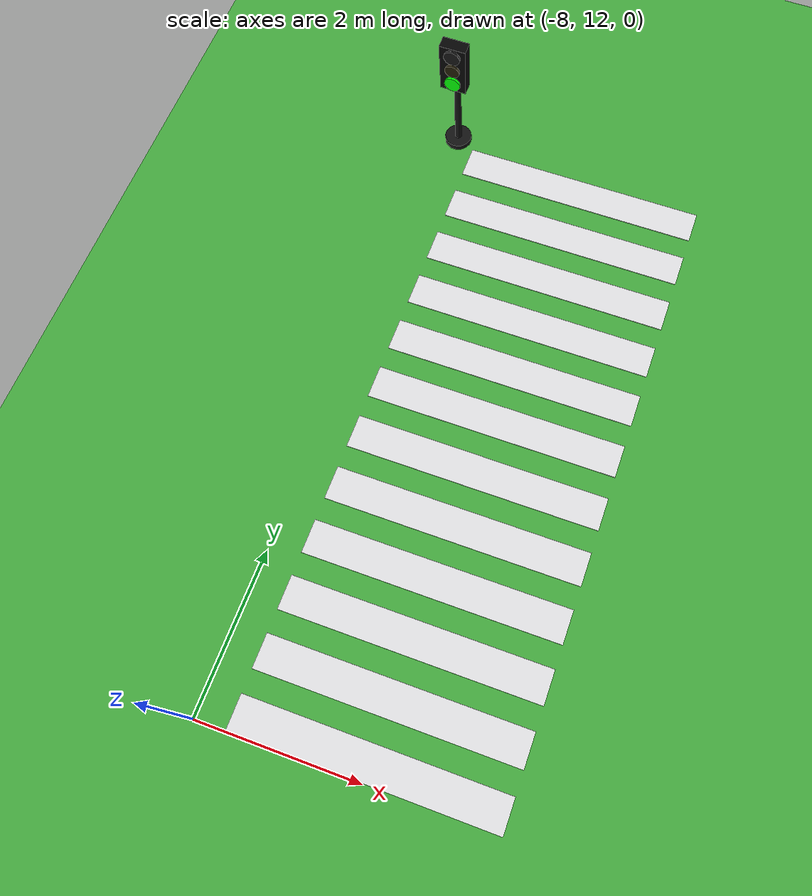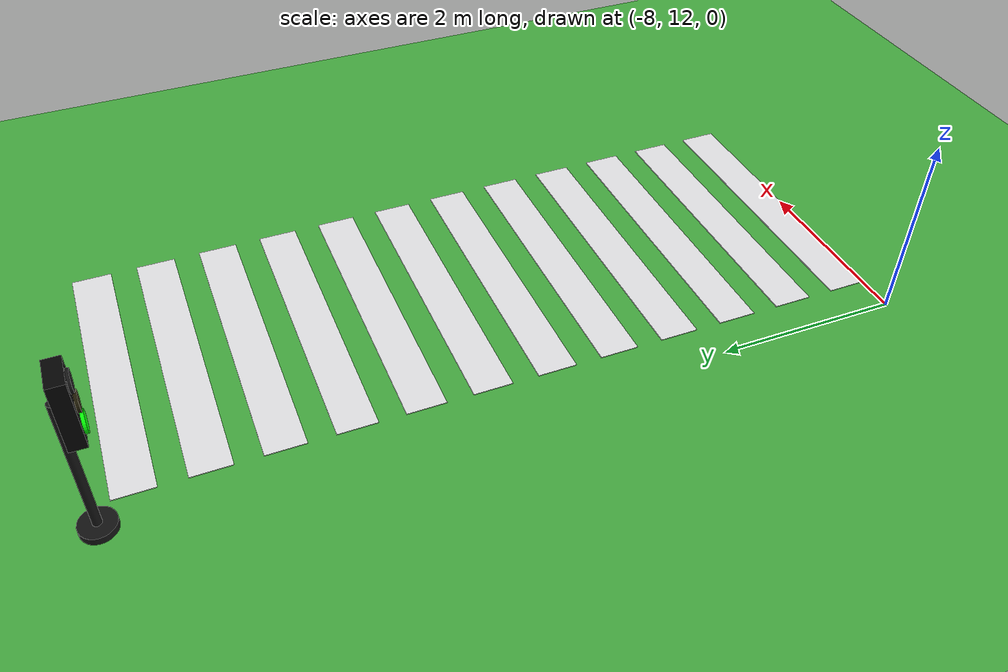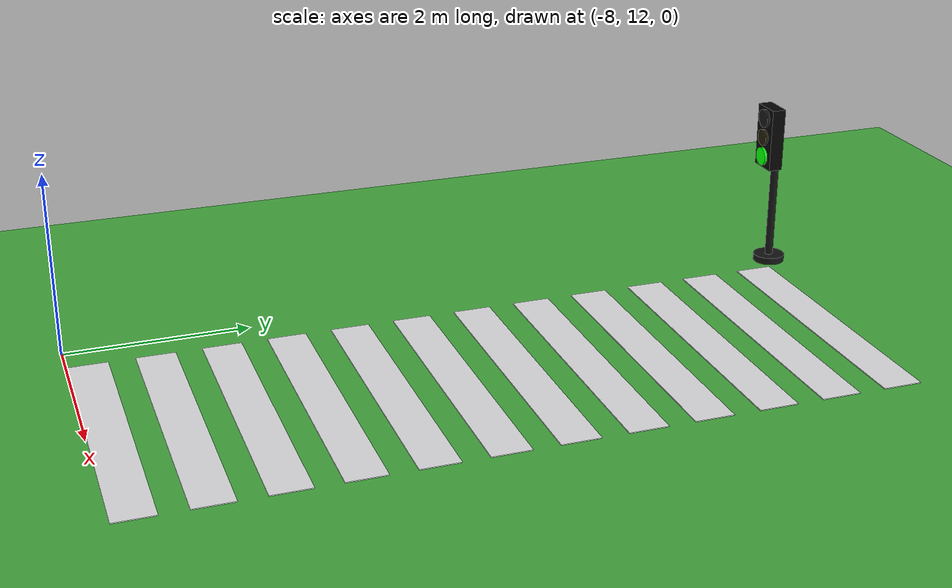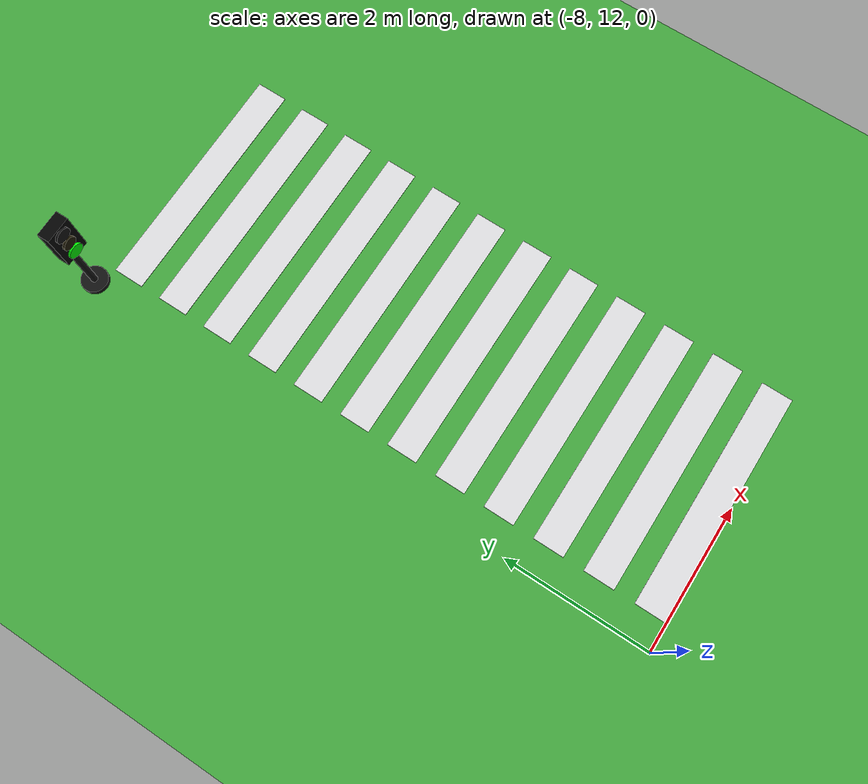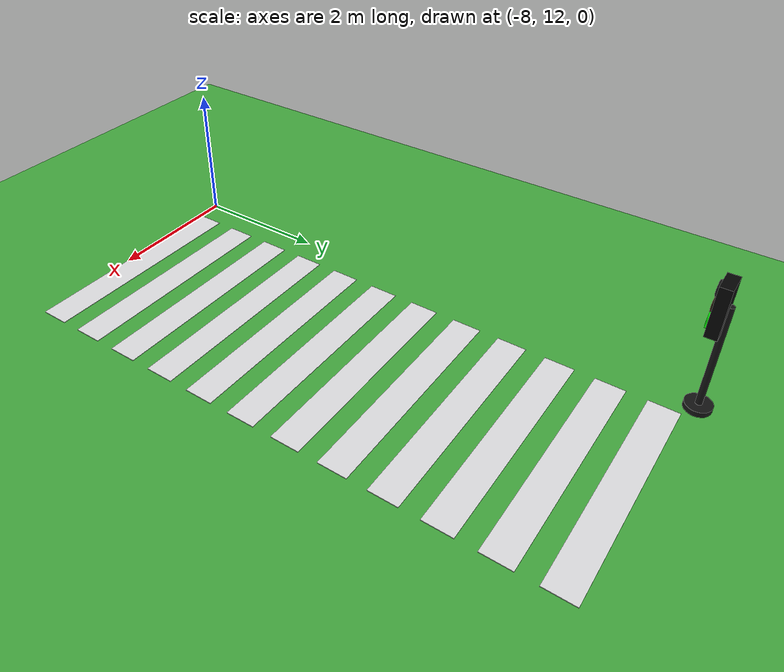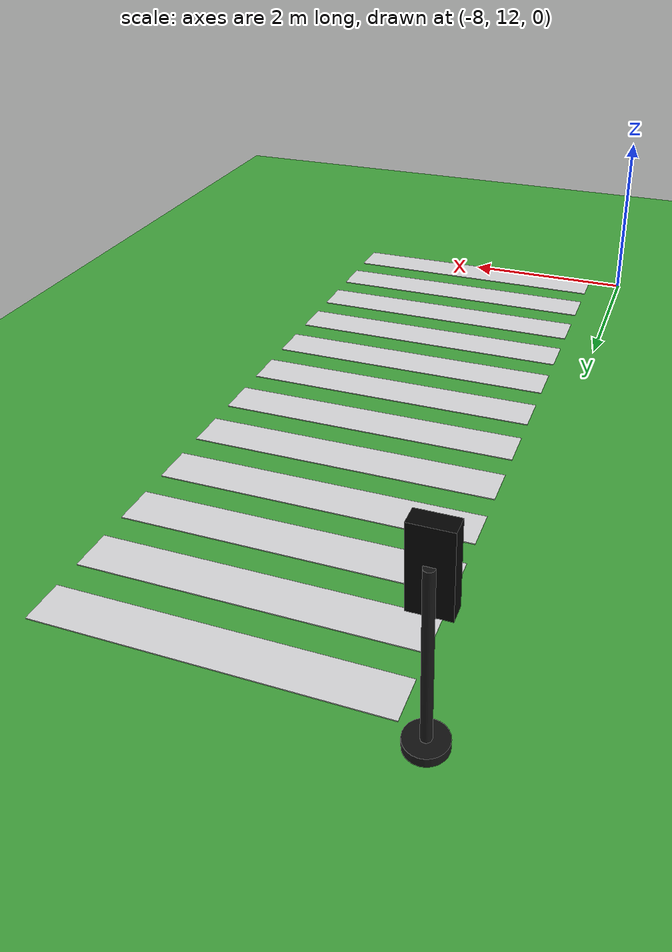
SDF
<sdf version="1.10">
 <world name="city_second">
  <model name="ground_plane">
   <static>true</static>
   <link name="link">
    <collision name="collision">
     <geometry><plane><normal>0 0 1</normal><size>300 300</size></plane></geometry>
    </collision>
    <visual name="visual">
     <geometry><plane><normal>0 0 1</normal><size>300 300</size></plane></geometry>
     <material>
      <ambient>0.280000001 0.689999998 0.25999999 1</ambient>
      <diffuse>0.280000001 0.689999998 0.25999999 1</diffuse>
      <specular>0.0299999993 0.0299999993 0.0299999993 1</specular>
     </material>
    </visual>
    <inertial>
     <mass>1</mass>
     <inertia><ixx>1</ixx><ixy>0</ixy><ixz>0</ixz><iyy>1</iyy><iyz>0</iyz><izz>1</izz></inertia>
    </inertial>
   </link>
  </model>
  <model name="crosswalk_v_2_1_east_5_2">
   <static>true</static>
   <pose>-6.0115999999999996 16.072099999999999 0.017000000000000001 0 0 0</pose>
   <link name="stripe_1">
    <collision name="collision">
     <geometry><box><size>3.2000000000000002 0.41999999999999998 0.01</size></box></geometry>
    </collision>
    <visual name="visual">
     <geometry><box><size>3.2000000000000002 0.41999999999999998 0.01</size></box></geometry>
     <material>
      <ambient>0.920000017 0.920000017 0.930000007 1</ambient>
      <diffuse>0.920000017 0.920000017 0.930000007 1</diffuse>
      <specular>0.0299999993 0.0299999993 0.0299999993 1</specular>
     </material>
    </visual>
    <pose>0 -3.8500000000000001 0 0 0 0</pose>
    <inertial>
     <mass>1</mass>
     <inertia><ixx>1</ixx><ixy>0</ixy><ixz>0</ixz><iyy>1</iyy><iyz>0</iyz><izz>1</izz></inertia>
    </inertial>
   </link>
   <link name="stripe_2">
    <collision name="collision">
     <geometry><box><size>3.2000000000000002 0.41999999999999998 0.01</size></box></geometry>
    </collision>
    <visual name="visual">
     <geometry><box><size>3.2000000000000002 0.41999999999999998 0.01</size></box></geometry>
     <material>
      <ambient>0.920000017 0.920000017 0.930000007 1</ambient>
      <diffuse>0.920000017 0.920000017 0.930000007 1</diffuse>
      <specular>0.0299999993 0.0299999993 0.0299999993 1</specular>
     </material>
    </visual>
    <pose>0 -3.1500000000000004 0 0 0 0</pose>
    <inertial>
     <mass>1</mass>
     <inertia><ixx>1</ixx><ixy>0</ixy><ixz>0</ixz><iyy>1</iyy><iyz>0</iyz><izz>1</izz></inertia>
    </inertial>
   </link>
   <link name="stripe_3">
    <collision name="collision">
     <geometry><box><size>3.2000000000000002 0.41999999999999998 0.01</size></box></geometry>
    </collision>
    <visual name="visual">
     <geometry><box><size>3.2000000000000002 0.41999999999999998 0.01</size></box></geometry>
     <material>
      <ambient>0.920000017 0.920000017 0.930000007 1</ambient>
      <diffuse>0.920000017 0.920000017 0.930000007 1</diffuse>
      <specular>0.0299999993 0.0299999993 0.0299999993 1</specular>
     </material>
    </visual>
    <pose>0 -2.4499999999999993 0 0 0 0</pose>
    <inertial>
     <mass>1</mass>
     <inertia><ixx>1</ixx><ixy>0</ixy><ixz>0</ixz><iyy>1</iyy><iyz>0</iyz><izz>1</izz></inertia>
    </inertial>
   </link>
   <link name="stripe_4">
    <collision name="collision">
     <geometry><box><size>3.2000000000000002 0.41999999999999998 0.01</size></box></geometry>
    </collision>
    <visual name="visual">
     <geometry><box><size>3.2000000000000002 0.41999999999999998 0.01</size></box></geometry>
     <material>
      <ambient>0.920000017 0.920000017 0.930000007 1</ambient>
      <diffuse>0.920000017 0.920000017 0.930000007 1</diffuse>
      <specular>0.0299999993 0.0299999993 0.0299999993 1</specular>
     </material>
    </visual>
    <pose>0 -1.75 0 0 0 0</pose>
    <inertial>
     <mass>1</mass>
     <inertia><ixx>1</ixx><ixy>0</ixy><ixz>0</ixz><iyy>1</iyy><iyz>0</iyz><izz>1</izz></inertia>
    </inertial>
   </link>
   <link name="stripe_5">
    <collision name="collision">
     <geometry><box><size>3.2000000000000002 0.41999999999999998 0.01</size></box></geometry>
    </collision>
    <visual name="visual">
     <geometry><box><size>3.2000000000000002 0.41999999999999998 0.01</size></box></geometry>
     <material>
      <ambient>0.920000017 0.920000017 0.930000007 1</ambient>
      <diffuse>0.920000017 0.920000017 0.930000007 1</diffuse>
      <specular>0.0299999993 0.0299999993 0.0299999993 1</specular>
     </material>
    </visual>
    <pose>0 -1.0500000000000007 0 0 0 0</pose>
    <inertial>
     <mass>1</mass>
     <inertia><ixx>1</ixx><ixy>0</ixy><ixz>0</ixz><iyy>1</iyy><iyz>0</iyz><izz>1</izz></inertia>
    </inertial>
   </link>
   <link name="stripe_6">
    <collision name="collision">
     <geometry><box><size>3.2000000000000002 0.41999999999999998 0.01</size></box></geometry>
    </collision>
    <visual name="visual">
     <geometry><box><size>3.2000000000000002 0.41999999999999998 0.01</size></box></geometry>
     <material>
      <ambient>0.920000017 0.920000017 0.930000007 1</ambient>
      <diffuse>0.920000017 0.920000017 0.930000007 1</diffuse>
      <specular>0.0299999993 0.0299999993 0.0299999993 1</specular>
     </material>
    </visual>
    <pose>0 -0.34999999999999964 0 0 0 0</pose>
    <inertial>
     <mass>1</mass>
     <inertia><ixx>1</ixx><ixy>0</ixy><ixz>0</ixz><iyy>1</iyy><iyz>0</iyz><izz>1</izz></inertia>
    </inertial>
   </link>
   <link name="stripe_7">
    <collision name="collision">
     <geometry><box><size>3.2000000000000002 0.41999999999999998 0.01</size></box></geometry>
    </collision>
    <visual name="visual">
     <geometry><box><size>3.2000000000000002 0.41999999999999998 0.01</size></box></geometry>
     <material>
      <ambient>0.920000017 0.920000017 0.930000007 1</ambient>
      <diffuse>0.920000017 0.920000017 0.930000007 1</diffuse>
      <specular>0.0299999993 0.0299999993 0.0299999993 1</specular>
     </material>
    </visual>
    <pose>0 0.35000000000000142 0 0 0 0</pose>
    <inertial>
     <mass>1</mass>
     <inertia><ixx>1</ixx><ixy>0</ixy><ixz>0</ixz><iyy>1</iyy><iyz>0</iyz><izz>1</izz></inertia>
    </inertial>
   </link>
   <link name="stripe_8">
    <collision name="collision">
     <geometry><box><size>3.2000000000000002 0.41999999999999998 0.01</size></box></geometry>
    </collision>
    <visual name="visual">
     <geometry><box><size>3.2000000000000002 0.41999999999999998 0.01</size></box></geometry>
     <material>
      <ambient>0.920000017 0.920000017 0.930000007 1</ambient>
      <diffuse>0.920000017 0.920000017 0.930000007 1</diffuse>
      <specular>0.0299999993 0.0299999993 0.0299999993 1</specular>
     </material>
    </visual>
    <pose>0 1.0500000000000007 0 0 0 0</pose>
    <inertial>
     <mass>1</mass>
     <inertia><ixx>1</ixx><ixy>0</ixy><ixz>0</ixz><iyy>1</iyy><iyz>0</iyz><izz>1</izz></inertia>
    </inertial>
   </link>
   <link name="stripe_9">
    <collision name="collision">
     <geometry><box><size>3.2000000000000002 0.41999999999999998 0.01</size></box></geometry>
    </collision>
    <visual name="visual">
     <geometry><box><size>3.2000000000000002 0.41999999999999998 0.01</size></box></geometry>
     <material>
      <ambient>0.920000017 0.920000017 0.930000007 1</ambient>
      <diffuse>0.920000017 0.920000017 0.930000007 1</diffuse>
      <specular>0.0299999993 0.0299999993 0.0299999993 1</specular>
     </material>
    </visual>
    <pose>0 1.75 0 0 0 0</pose>
    <inertial>
     <mass>1</mass>
     <inertia><ixx>1</ixx><ixy>0</ixy><ixz>0</ixz><iyy>1</iyy><iyz>0</iyz><izz>1</izz></inertia>
    </inertial>
   </link>
   <link name="stripe_10">
    <collision name="collision">
     <geometry><box><size>3.2000000000000002 0.41999999999999998 0.01</size></box></geometry>
    </collision>
    <visual name="visual">
     <geometry><box><size>3.2000000000000002 0.41999999999999998 0.01</size></box></geometry>
     <material>
      <ambient>0.920000017 0.920000017 0.930000007 1</ambient>
      <diffuse>0.920000017 0.920000017 0.930000007 1</diffuse>
      <specular>0.0299999993 0.0299999993 0.0299999993 1</specular>
     </material>
    </visual>
    <pose>0 2.4499999999999993 0 0 0 0</pose>
    <inertial>
     <mass>1</mass>
     <inertia><ixx>1</ixx><ixy>0</ixy><ixz>0</ixz><iyy>1</iyy><iyz>0</iyz><izz>1</izz></inertia>
    </inertial>
   </link>
   <link name="stripe_11">
    <collision name="collision">
     <geometry><box><size>3.2000000000000002 0.41999999999999998 0.01</size></box></geometry>
    </collision>
    <visual name="visual">
     <geometry><box><size>3.2000000000000002 0.41999999999999998 0.01</size></box></geometry>
     <material>
      <ambient>0.920000017 0.920000017 0.930000007 1</ambient>
      <diffuse>0.920000017 0.920000017 0.930000007 1</diffuse>
      <specular>0.0299999993 0.0299999993 0.0299999993 1</specular>
     </material>
    </visual>
    <pose>0 3.1499999999999986 0 0 0 0</pose>
    <inertial>
     <mass>1</mass>
     <inertia><ixx>1</ixx><ixy>0</ixy><ixz>0</ixz><iyy>1</iyy><iyz>0</iyz><izz>1</izz></inertia>
    </inertial>
   </link>
   <link name="stripe_12">
    <collision name="collision">
     <geometry><box><size>3.2000000000000002 0.41999999999999998 0.01</size></box></geometry>
    </collision>
    <visual name="visual">
     <geometry><box><size>3.2000000000000002 0.41999999999999998 0.01</size></box></geometry>
     <material>
      <ambient>0.920000017 0.920000017 0.930000007 1</ambient>
      <diffuse>0.920000017 0.920000017 0.930000007 1</diffuse>
      <specular>0.0299999993 0.0299999993 0.0299999993 1</specular>
     </material>
    </visual>
    <pose>0 3.8500000000000014 0 0 0 0</pose>
    <inertial>
     <mass>1</mass>
     <inertia><ixx>1</ixx><ixy>0</ixy><ixz>0</ixz><iyy>1</iyy><iyz>0</iyz><izz>1</izz></inertia>
    </inertial>
   </link>
  </model>
  <model name="simple_traffic_light_green_south_1_3_2">
   <static>true</static>
   <pose>-7.8629358100978832 20.257268512716777 0 0 0 -3.1415900000000754</pose>
   <link name="base">
    <pose>0 0 0.040000000000000001 0 0 0</pose>
    <collision name="collision">
     <geometry>
      <cylinder><radius>0.17999999999999999</radius><length>0.080000000000000002</length></cylinder>
     </geometry>
    </collision>
    <visual name="visual">
     <geometry>
      <cylinder><radius>0.17999999999999999</radius><length>0.080000000000000002</length></cylinder>
     </geometry>
     <material>
      <ambient>0.0799999982 0.0799999982 0.0799999982 1</ambient>
      <diffuse>0.0799999982 0.0799999982 0.0799999982 1</diffuse>
      <specular>0.150000006 0.150000006 0.150000006 1</specular>
      <emissive>0 0 0 1</emissive>
     </material>
    </visual>
    <inertial>
     <mass>1</mass>
     <inertia><ixx>1</ixx><ixy>0</ixy><ixz>0</ixz><iyy>1</iyy><iyz>0</iyz><izz>1</izz></inertia>
    </inertial>
   </link>
   <link name="pole">
    <pose>0 -3.5527136788005009e-15 0.80000000000000016 0 0 0</pose>
    <collision name="collision">
     <geometry>
      <cylinder><radius>0.044999999999999998</radius><length>1.6000000000000001</length></cylinder>
     </geometry>
    </collision>
    <visual name="visual">
     <geometry>
      <cylinder><radius>0.044999999999999998</radius><length>1.6000000000000001</length></cylinder>
     </geometry>
     <material>
      <ambient>0.0799999982 0.0799999982 0.0799999982 1</ambient>
      <diffuse>0.0799999982 0.0799999982 0.0799999982 1</diffuse>
      <specular>0.150000006 0.150000006 0.150000006 1</specular>
      <emissive>0 0 0 1</emissive>
     </material>
    </visual>
    <inertial>
     <mass>1</mass>
     <inertia><ixx>1</ixx><ixy>0</ixy><ixz>0</ixz><iyy>1</iyy><iyz>0</iyz><izz>1</izz></inertia>
    </inertial>
   </link>
   <link name="signal_box">
    <pose>0 0.089999999999992752 1.5500000000000003 0 0 0</pose>
    <collision name="collision">
     <geometry><box><size>0.34000000000000002 0.16 0.71999999999999997</size></box></geometry>
    </collision>
    <visual name="visual">
     <geometry><box><size>0.34000000000000002 0.16 0.71999999999999997</size></box></geometry>
     <material>
      <ambient>0.0199999996 0.0199999996 0.0199999996 1</ambient>
      <diffuse>0.0199999996 0.0199999996 0.0199999996 1</diffuse>
      <specular>0.150000006 0.150000006 0.150000006 1</specular>
      <emissive>0 0 0 1</emissive>
     </material>
    </visual>
    <inertial>
     <mass>1</mass>
     <inertia><ixx>1</ixx><ixy>0</ixy><ixz>0</ixz><iyy>1</iyy><iyz>0</iyz><izz>1</izz></inertia>
    </inertial>
   </link>
   <link name="red_lens">
    <pose>0 0.18099999999999383 1.78 1.5707963267999998 1.2475048931562623e-16 -1.2475078878636004e-16</pose>
    <collision name="collision">
     <geometry><cylinder><radius>0.105</radius><length>0.035000000000000003</length></cylinder></geometry>
    </collision>
    <visual name="visual">
     <geometry><cylinder><radius>0.105</radius><length>0.035000000000000003</length></cylinder></geometry>
     <material>
      <ambient>0.0799999982 0.0799999982 0.0799999982 1</ambient>
      <diffuse>0.0799999982 0.0799999982 0.0799999982 1</diffuse>
      <specular>0.150000006 0.150000006 0.150000006 1</specular>
      <emissive>0 0 0 1</emissive>
     </material>
    </visual>
    <inertial>
     <mass>1</mass>
     <inertia><ixx>1</ixx><ixy>0</ixy><ixz>0</ixz><iyy>1</iyy><iyz>0</iyz><izz>1</izz></inertia>
    </inertial>
   </link>
   <link name="yellow_lens">
    <pose>-8.8817841970012523e-16 0.18199999999999861 1.5500000000000003 1.5707963267999998 1.2475048931562623e-16 -1.2475078878636004e-16</pose>
    <collision name="collision">
     <geometry>
      <cylinder><radius>0.095000000000000001</radius><length>0.035000000000000003</length></cylinder>
     </geometry>
    </collision>
    <visual name="visual">
     <geometry>
      <cylinder><radius>0.095000000000000001</radius><length>0.035000000000000003</length></cylinder>
     </geometry>
     <material>
      <ambient>0.119999997 0.100000001 0.0199999996 1</ambient>
      <diffuse>0.119999997 0.100000001 0.0199999996 1</diffuse>
      <specular>0.150000006 0.150000006 0.150000006 1</specular>
      <emissive>0 0 0 1</emissive>
     </material>
    </visual>
    <inertial>
     <mass>1</mass>
     <inertia><ixx>1</ixx><ixy>0</ixy><ixz>0</ixz><iyy>1</iyy><iyz>0</iyz><izz>1</izz></inertia>
    </inertial>
   </link>
   <link name="green_lens">
    <pose>0 0.18299999999999272 1.3200000000000003 1.5707963267999998 1.2475048931562623e-16 -1.2475078878636004e-16</pose>
    <collision name="collision">
     <geometry><cylinder><radius>0.105</radius><length>0.035000000000000003</length></cylinder></geometry>
    </collision>
    <visual name="visual">
     <geometry><cylinder><radius>0.105</radius><length>0.035000000000000003</length></cylinder></geometry>
     <material>
      <ambient>0.0199999996 1 0.0199999996 1</ambient>
      <diffuse>0.0199999996 1 0.0199999996 1</diffuse>
      <specular>0.150000006 0.150000006 0.150000006 1</specular>
      <emissive>0.0199999996 1 0.0199999996 1</emissive>
     </material>
    </visual>
    <inertial>
     <mass>1</mass>
     <inertia><ixx>1</ixx><ixy>0</ixy><ixz>0</ixz><iyy>1</iyy><iyz>0</iyz><izz>1</izz></inertia>
    </inertial>
   </link>
  </model>
 </world>
</sdf>
